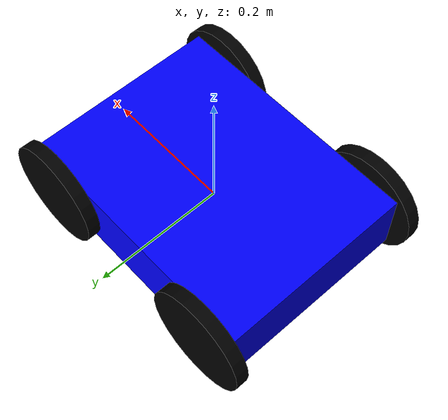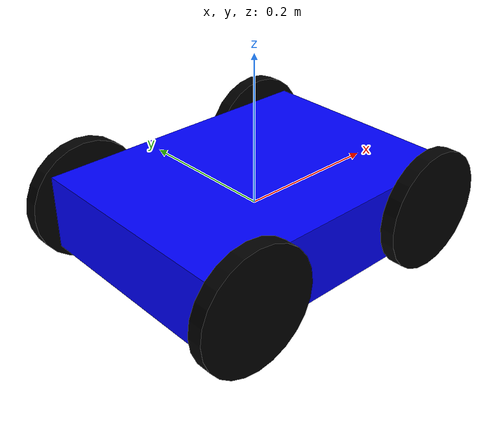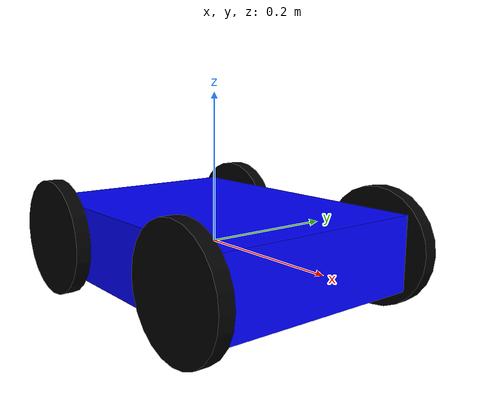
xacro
<?xml version="1.0"?>
<robot name="lidar_bot" xmlns:xacro="http://www.ros.org/wiki/xacro">

  <!-- Robot Params -->
  <xacro:property name="body_length" value="0.4"/>
  <xacro:property name="body_width" value="0.3"/>
  <xacro:property name="body_height" value="0.1"/>
  <xacro:property name="wheel_radius" value="0.08"/>
  <xacro:property name="wheel_width" value="0.02"/>
  <xacro:property name="wheel_length_gap" value="0.05"/>

  <!-- Wheels -->
  <xacro:macro name="wheel" params="prefix x y wheel_rotate axix">
    <link name="${prefix}_wheel">
      <visual>
        <geometry>
          <cylinder radius="${wheel_radius}" length="${wheel_width}"/>
        </geometry>
        <material name="black"/>
      </visual>
      <collision>
        <geometry>
          <cylinder radius="${wheel_radius}" length="${wheel_width}"/>
        </geometry>
      </collision>
      <inertial>
        <origin xyz="0 0 ${wheel_radius}" rpy="0 0 0"/>
        <mass value="0.2"/>
        <inertia ixx="0.001633" ixy="0" ixz="0" iyy="0.001633" iyz="0" izz="0.0016"/>
      </inertial>
    </link>

    <joint name="${prefix}_wheel_joint" type="continuous">
      <parent link="base_link"/>
      <child link="${prefix}_wheel"/>
      <origin xyz="${x} ${y} 0" rpy="${wheel_rotate} 0 0"/>
      <limit effort="50" velocity="20" lower="-100" upper="100"/>
      <axis xyz="0 0 ${axix}"/>
      <dynamics damping="0.1" friction="0.1"/>
      <safety_controller soft_lower_limit="-1.0" soft_upper_limit="1.0" k_position="100" k_velocity="10"/>
      <calibration>
        <rising>0.0</rising>
        <falling>0.0</falling>
      </calibration>
    </joint>

    <gazebo reference="${prefix}_wheel">
      <visual name="${prefix}_wheel_dot">
        <origin xyz="${wheel_radius} 0 0" rpy="0 0 0"/>
        <geometry>
          <cylinder radius="0.05" length="0.05"/>
        </geometry>
        <material>Gazebo/Red</material>
      </visual>
    </gazebo>
  </xacro:macro>

  <!-- Materials -->
  <material name="blue">
    <color rgba="0 0 1 1"/>
  </material>
  <material name="black">
    <color rgba="0 0 0 1"/>
  </material>
  <material name="white">
    <color rgba="1 1 1 1"/>
  </material>
  <material name="red">
    <color rgba="1 0 0 1"/>
  </material>
  <material name="green">
    <color rgba="0 1 0 1"/>
  </material>
  <material name="yellow">
    <color rgba="1 1 0 1"/>
  </material>
  <material name="neon_pink">
    <color rgba="1.0 0.2 0.6 1"/>
  </material>

  <!-- Base Link -->
  <link name="base_link">
    <visual>
      <geometry>
        <box size="${body_length} ${body_width} ${body_height}"/>
      </geometry>
      <material name="blue"/>
    </visual>
    <collision>
      <origin xyz="0 0 ${wheel_radius/2}"/>
      <geometry>
        <box size="${body_length} ${body_width} ${body_height}"/>
      </geometry>
    </collision>
    <inertial>
      <mass value="0.5"/>
      <inertia ixx="0.04167" ixy="0" ixz="0" iyy="0.07083" iyz="0" izz="0.10417"/>
    </inertial>
  </link>

  <!-- Wheels -->
  <xacro:wheel prefix="left_front" x="-${body_length/2 - wheel_length_gap}" y="${body_width/2 + wheel_width/2}" wheel_rotate="-1.570796" axix="-1"/>
  <xacro:wheel prefix="left_rear" x="${body_length/2 - wheel_length_gap}" y="${body_width/2 + wheel_width/2}" wheel_rotate="-1.570796" axix="-1"/>
  <xacro:wheel prefix="right_front" x="-${body_length/2 - wheel_length_gap}" y="-${body_width/2 + wheel_width/2}" wheel_rotate="1.570796" axix="1"/>
  <xacro:wheel prefix="right_rear" x="${body_length/2 - wheel_length_gap}" y="-${body_width/2 + wheel_width/2}" wheel_rotate="1.570796" axix="1"/>

  <gazebo reference="base_link">
    <mu1>1.0</mu1>
    <mu2>1.0</mu2>
    <material>Gazebo/Blue</material>
  </gazebo>
  <gazebo reference="left_front_wheel">
    <mu1>1.0</mu1>
    <mu2>1.0</mu2>
    <dynamics>
      <friction>5.0</friction>
      <damping>0.7</damping>
    </dynamics>
    <kp>1000000.0</kp>
    <kd>1.0</kd>
    <material>Gazebo/Black</material>
  </gazebo>
  <gazebo reference="left_rear_wheel">
    <mu1>0.1</mu1>
    <mu2>0.1</mu2>
    <dynamics>
      <friction>1.0</friction>
      <damping>0.7</damping>
    </dynamics>
    <kp>1000000.0</kp>
    <kd>1.0</kd>
    <material>Gazebo/Green</material>
  </gazebo>
  <gazebo reference="right_front_wheel">
    <mu1>1.0</mu1>
    <mu2>1.0</mu2>
    <dynamics>
      <friction>5.0</friction>
      <damping>0.7</damping>
    </dynamics>
    <kp>1000000.0</kp>
    <kd>1.0</kd>
    <material>Gazebo/Black</material>
  </gazebo>
  <gazebo reference="right_rear_wheel">
    <mu1>0.1</mu1>
    <mu2>0.1</mu2>
    <dynamics>
      <friction>1.0</friction>
      <damping>0.7</damping>
    </dynamics>
    <kp>1000000.0</kp>
    <kd>1.0</kd>
    <material>Gazebo/Red</material>
  </gazebo>

  <!-- left_front_wheel -->
  <transmission name="left_front_wheel_trans">
    <type>transmission_interface/SimpleTransmission</type>
    <joint name="left_front_wheel_joint">
      <hardwareInterface>hardware_interface/VelocityJointInterface</hardwareInterface>
    </joint>
    <actuator name="left_front_motor">
      <hardwareInterface>hardware_interface/VelocityJointInterface</hardwareInterface>
    </actuator>
  </transmission>
  <gazebo reference="left_front_wheel_joint">
    <provideFeedback>true</provideFeedback>
  </gazebo>

  <!-- left_rear_wheel -->
  <transmission name="left_rear_wheel_trans">
    <type>transmission_interface/SimpleTransmission</type>
    <joint name="left_rear_wheel_joint">
      <hardwareInterface>hardware_interface/VelocityJointInterface</hardwareInterface>
    </joint>
    <actuator name="left_rear_motor">
      <hardwareInterface>hardware_interface/VelocityJointInterface</hardwareInterface>
    </actuator>
  </transmission>
  <gazebo reference="left_rear_wheel_joint">
    <provideFeedback>true</provideFeedback>
  </gazebo>

  <!-- right_front_wheel -->
  <transmission name="right_front_wheel_trans">
    <type>transmission_interface/SimpleTransmission</type>
    <joint name="right_front_wheel_joint">
      <hardwareInterface>hardware_interface/VelocityJointInterface</hardwareInterface>
    </joint>
    <actuator name="right_front_motor">
      <hardwareInterface>hardware_interface/VelocityJointInterface</hardwareInterface>
    </actuator>
  </transmission>
  <gazebo reference="right_front_wheel_joint">
    <provideFeedback>true</provideFeedback>
  </gazebo>

  <!-- right_rear_wheel -->
  <transmission name="right_rear_wheel_trans">
    <type>transmission_interface/SimpleTransmission</type>
    <joint name="right_rear_wheel_joint">
      <hardwareInterface>hardware_interface/VelocityJointInterface</hardwareInterface>
    </joint>
    <actuator name="right_rear_motor">
      <hardwareInterface>hardware_interface/VelocityJointInterface</hardwareInterface>
    </actuator>
  </transmission>
  <gazebo reference="right_rear_wheel_joint">
    <provideFeedback>true</provideFeedback>
  </gazebo>

  <!-- LiDAR Sensor (Hokuyo style) -->

  <!-- Plugin to load ros_control -->
  <gazebo>
    <plugin name="gazebo_ros_control" filename="libgazebo_ros_control.so">
      <robotNamespace>/</robotNamespace>
    </plugin>
    <plugin name="diff_drive_controller" filename="libgazebo_ros_diff_drive.so">
      <updateRate>100.0</updateRate>
      <robotNamespace>/</robotNamespace>
      <leftJoint>left_front_wheel_joint</leftJoint>
      <rightJoint>right_front_wheel_joint</rightJoint>
      <wheelSeparation>0.32</wheelSeparation>
      <wheelDiameter>0.16</wheelDiameter>
      <robotBaseFrame>base_link</robotBaseFrame>
      <rosDebugLevel>1</rosDebugLevel>
      <publishWheelTF>true</publishWheelTF>
      <publishOdomTF>true</publishOdomTF>
      <publishWheelJointState>true</publishWheelJointState>
      <wheelAcceleration>1.0</wheelAcceleration>
      <wheelTorque>15</wheelTorque>
      <odometrySource>odom</odometrySource>
      <publishTf>1</publishTf>
      <commandTopic>cmd_vel</commandTopic>
      <odometryTopic>odom</odometryTopic>
      <odometryFrame>odom</odometryFrame>
      <broadcastTF>true</broadcastTF>
      <covariance_x>0.0001</covariance_x>
      <covariance_y>0.0001</covariance_y>
      <covariance_yaw>0.0001</covariance_yaw>
    </plugin>
  </gazebo>

</robot>
